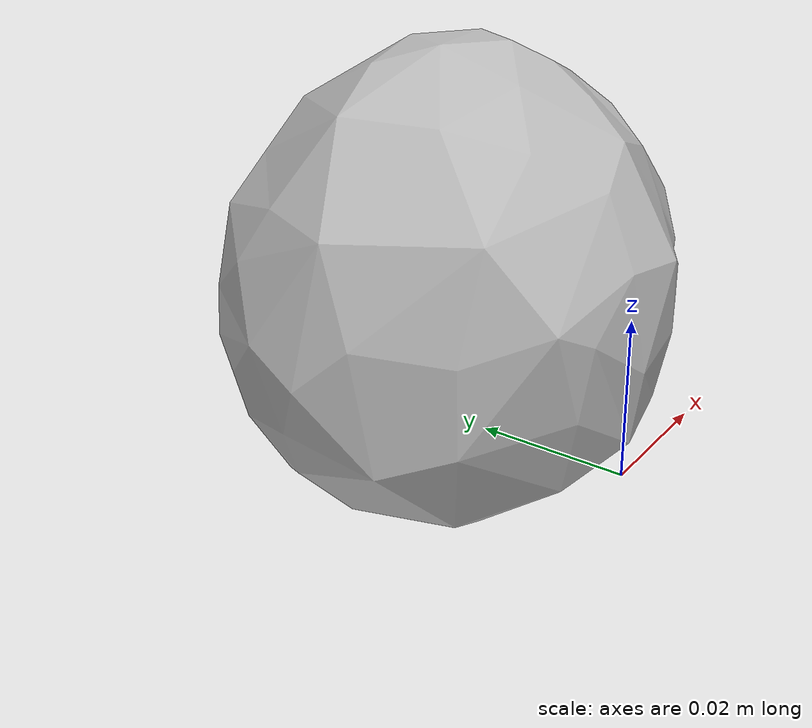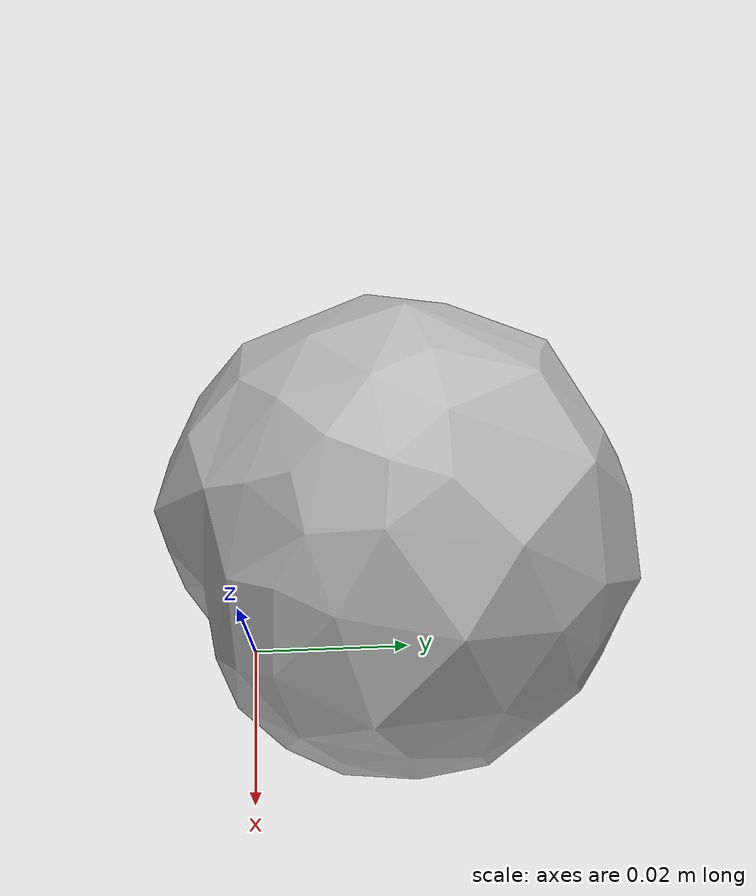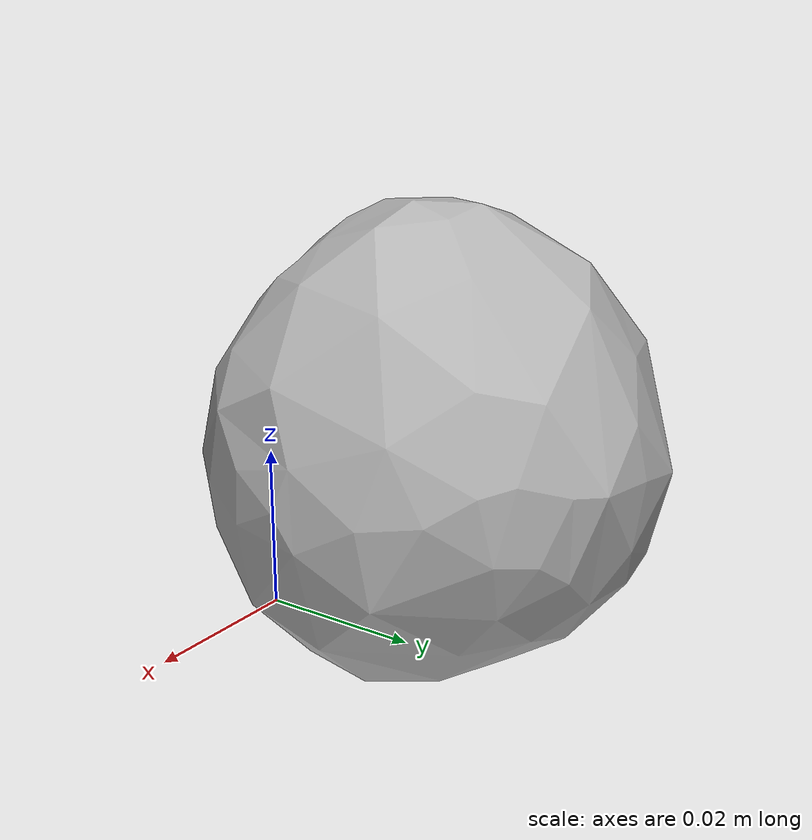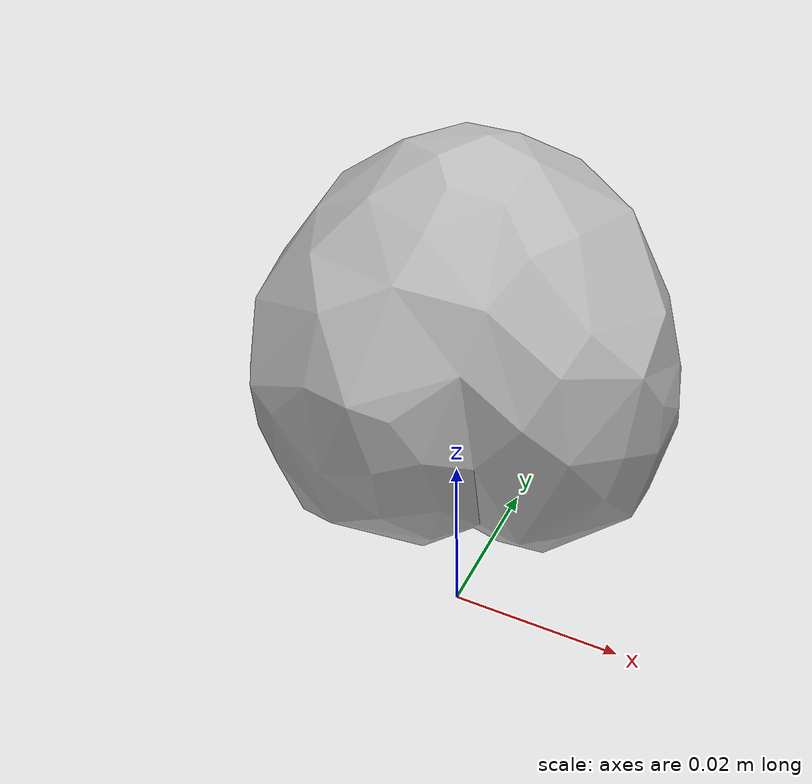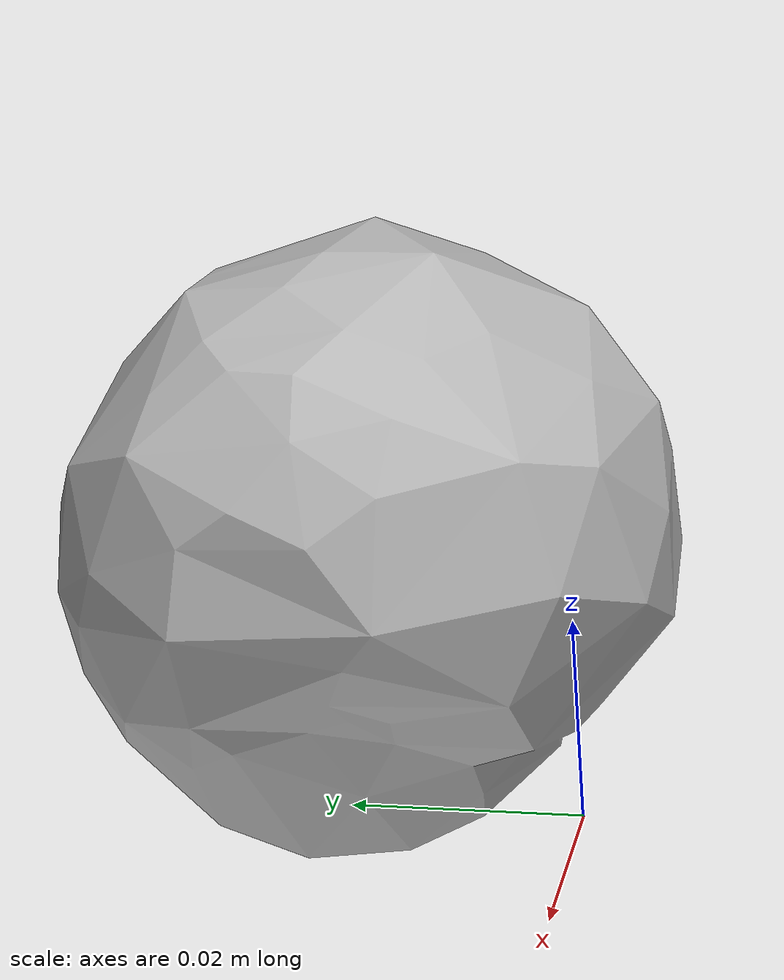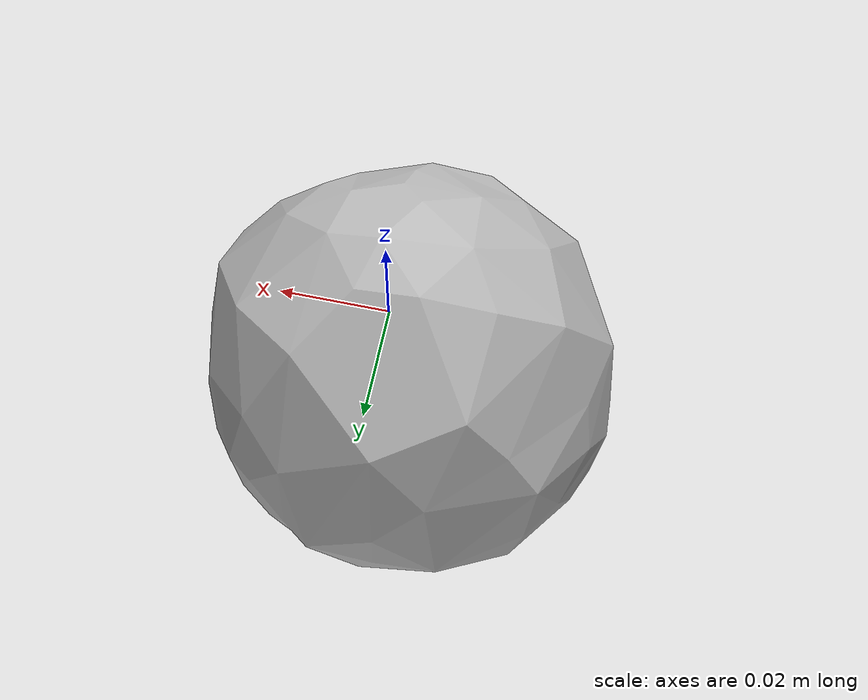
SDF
<?xml version='1.0'?>
<sdf version="1.4">
  <model name="018_plum">
    <static>false</static>
    <link name="link">
      <inertial>
        <pose>-0.007697139145417524 0.01939388446926035 0.02358116864256186 -1.7098093376244599 -0.7879199350833184 1.7926473154085008</pose>
        <mass>0.008732522401442238</mass>
        <inertia>
          <ixx>2.7535423366638445e-06</ixx>
          <ixy>5.490585387160693e-22</ixy>
          <ixz>-1.0677785952466693e-22</ixz>
          <iyy>2.667848976058383e-06</iyy>
          <iyz>-2.2178014213578795e-23</iyz>
          <izz>2.569563981196712e-06</izz>
        </inertia>
      </inertial>
      <collision name="collision">
        <geometry>
          <mesh>
            <!-- Use a downsampled mesh for collisions -->
            <uri>model:///018_plum/018_plum_250_collision.stl</uri>
	        </mesh>
        </geometry>
        <surface>
      </surface>
      </collision>
      <visual name="visual">
        <geometry>
          <mesh>
            <uri>model:///018_plum/textured.obj</uri>
	        </mesh>
        </geometry>
        <material>
          <script>
            <uri>model:///018_plum/018_plum.material</uri>
            <name>018_plum</name>
          </script>
        </material>
      </visual>
    </link>
  </model>
</sdf>
